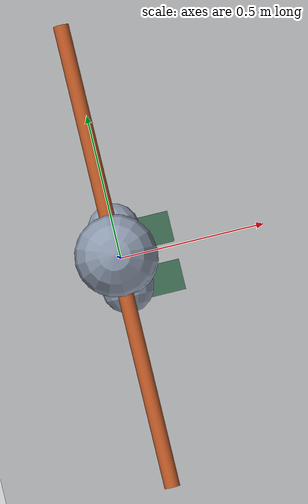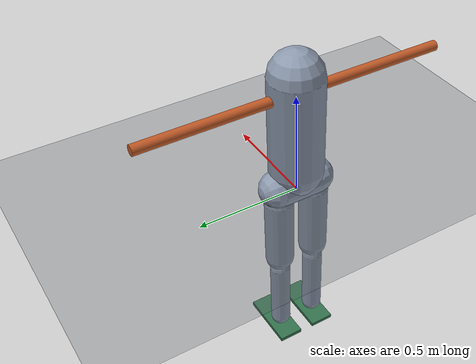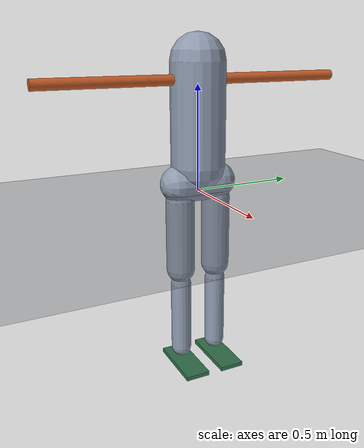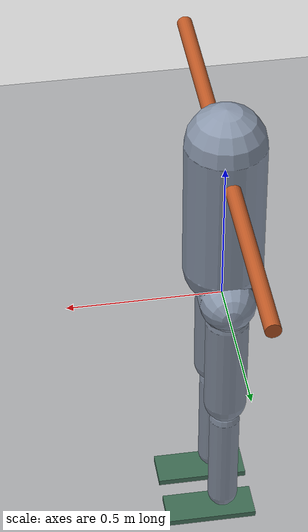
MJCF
<mujoco model="loaded_jump_athlete_v2">
  <compiler angle="radian" coordinate="local" inertiafromgeom="false"
            eulerseq="xyz" autolimits="true"/>

  <option timestep="0.000125"
          integrator="implicitfast"
          solver="Newton"
          iterations="100"
          ls_iterations="50"
          tolerance="1e-10"
          ls_tolerance="0.01"
          cone="elliptic"
          impratio="10.0"
          jacobian="dense"
          gravity="0 0 -9.81">
    <flag warmstart="enable"/>
  </option>

  <default>
    <joint limited="true" solreflimit="0.02 1.0" solimplimit="0.90 0.95 0.001 0.5 2.0"/>
    <geom condim="3" margin="0.0" gap="0.0" priority="0"
          solref="0.004 1.0" solimp="0.99 0.99 0.001 0.5 2.0"/>
    <motor ctrllimited="true" forcelimited="true"/>
    <default class="foot_box">
      <geom type="box" contype="2" conaffinity="1"
            friction="0.9 0.005 0.0001" rgba="0.20 0.45 0.30 1"/>
    </default>
    <default class="shell">
      <geom contype="0" conaffinity="0"
            friction="0.5 0.005 0.0001" rgba="0.55 0.60 0.68 1"/>
    </default>
  </default>

  <worldbody>
    <light name="key" pos="1.5 -1.5 3.0" dir="-0.4 0.4 -1" directional="true"/>
    <geom name="floor" type="plane" pos="0 0 0" size="0 0 0.05"
          contype="1" conaffinity="6"
          friction="0.9 0.005 0.0001"
          solref="0.016 1.0" solimp="0.99 0.99 0.001 0.5 2.0"
          margin="0.0" gap="0.0" condim="3" priority="0"
          rgba="0.35 0.37 0.40 1"/>

    <!-- pelvis root : sagittal free (x,z, pitch) — y, roll, yaw eliminated — honestly floating, no artificial positional catch, zero passive damping -->
    <body name="pelvis" pos="0 0 0" quat="1 0 0 0">
      <joint name="root_tx" type="slide" axis="1 0 0" limited="false" stiffness="0" damping="0" armature="0"/>
      <joint name="root_tz" type="slide" axis="0 0 1" limited="false" stiffness="0" damping="0" armature="0"/>
      <joint name="root_ry" type="hinge" axis="0 1 0" limited="false" stiffness="0" damping="0" armature="0"/>
      <inertial pos="0 0 0.070" quat="1 0 0 0" mass="10.65" diaginertia="0.086975 0.040115 0.09230"/>
      <geom name="pelvis_shell" class="shell" type="capsule" fromto="0 -0.10 0.040 0 0.10 0.040" size="0.090"/>
      <geom name="pelvis_fall" type="capsule" fromto="0 -0.10 0.040 0 0.10 0.040" size="0.090"
            contype="4" conaffinity="0" group="1"
            condim="3" margin="0.0" gap="0.0" priority="0"
            solref="0.004 1.0" solimp="0.99 0.99 0.001 0.5 2.0"
            friction="0.9 0.005 0.0001" rgba="0.55 0.60 0.68 0.2"/>

      <!-- torso + load -->
      <body name="torso_head_arms" pos="0 0 0.10" quat="1 0 0 0">
        <joint name="lumbar" type="hinge" axis="0 1 0" range="-0.60 0.60" limited="true" stiffness="15.0" damping="5.0" armature="0.02"/>
        <inertial pos="0 0 0.260" quat="1 0 0 0" mass="40.20" diaginertia="1.72190 1.48070 0.62712"/>
        <geom name="torso_shell" class="shell" type="capsule" fromto="0 0 0.020 0 0 0.500" size="0.130"/>
        <geom name="torso_fall" type="capsule" fromto="0 0 0.020 0 0 0.500" size="0.130"
              contype="4" conaffinity="0" group="1"
              condim="3" margin="0.0" gap="0.0" priority="0"
              solref="0.004 1.0" solimp="0.99 0.99 0.001 0.5 2.0"
              friction="0.9 0.005 0.0001" rgba="0.55 0.60 0.68 0.2"/>
        <body name="external_load" pos="0 0 0.420" quat="1 0 0 0">
          <inertial pos="0 0 0" quat="1 0 0 0" mass="20.0" diaginertia="3.753125 0.006250 3.753125"/>
          <geom name="load_shell" class="shell" type="cylinder" size="0.025 0.750" quat="0.70710678 -0.70710678 0 0" rgba="0.75 0.35 0.15 1"/>
        </body>
      </body>

      <!-- left leg -->
      <body name="left_thigh" pos="0 0.095 0" quat="1 0 0 0">
        <joint name="left_hip" type="hinge" axis="0 1 0" range="-0.50 1.80" limited="true" stiffness="15.0" damping="8.0" armature="0.02"/>
        <inertial pos="0 0 -0.186" quat="1 0 0 0" mass="7.50" diaginertia="0.126109 0.126109 0.021094"/>
        <geom name="left_thigh_shell" class="shell" type="capsule" fromto="0 0 -0.040 0 0 -0.390" size="0.070"/>
        <geom name="left_thigh_fall" type="capsule" fromto="0 0 -0.040 0 0 -0.390" size="0.070"
              contype="4" conaffinity="0" group="1"
              condim="3" margin="0.0" gap="0.0" priority="0"
              solref="0.004 1.0" solimp="0.99 0.99 0.001 0.5 2.0"
              friction="0.9 0.005 0.0001" rgba="0.55 0.60 0.68 0.2"/>
        <body name="left_shank" pos="0 0 -0.43" quat="1 0 0 0">
          <joint name="left_knee" type="hinge" axis="0 -1 0" range="0 2.40" limited="true" stiffness="15.0" damping="8.0" armature="0.015"/>
          <inertial pos="0 0 -0.186" quat="1 0 0 0" mass="3.4875" diaginertia="0.056374 0.056374 0.005275"/>
          <geom name="left_shank_shell" class="shell" type="capsule" fromto="0 0 -0.040 0 0 -0.390" size="0.050"/>
          <geom name="left_shank_fall" type="capsule" fromto="0 0 -0.040 0 0 -0.390" size="0.050"
                contype="4" conaffinity="0" group="1"
                condim="3" margin="0.0" gap="0.0" priority="0"
                solref="0.004 1.0" solimp="0.99 0.99 0.001 0.5 2.0"
                friction="0.9 0.005 0.0001" rgba="0.55 0.60 0.68 0.2"/>
          <body name="left_foot" pos="0 0 -0.43" quat="1 0 0 0">
            <joint name="left_ankle" type="hinge" axis="0 1 0" range="-0.70 0.50" limited="true" stiffness="15.0" damping="5.0" armature="0.008"/>
            <inertial pos="0.045 0 -0.020" quat="1 0 0 0" mass="1.0875" diaginertia="0.001262 0.006570 0.006944"/>
            <!-- robust box foot: center 0.045 relative ankle; half-sizes 0.15 x 0.06 x 0.010 => full length 0.30, width 0.12, thickness 0.02 ; RES-6 calibrated solref 0.016 -->
            <geom name="left_foot_box" class="foot_box" type="box" pos="0.045 0 -0.030" size="0.150 0.060 0.010" solref="0.016 1.0" solimp="0.99 0.99 0.001 0.5 2.0"/>
          </body>
        </body>
      </body>

      <!-- right leg -->
      <body name="right_thigh" pos="0 -0.095 0" quat="1 0 0 0">
        <joint name="right_hip" type="hinge" axis="0 1 0" range="-0.50 1.80" limited="true" stiffness="15.0" damping="8.0" armature="0.02"/>
        <inertial pos="0 0 -0.186" quat="1 0 0 0" mass="7.50" diaginertia="0.126109 0.126109 0.021094"/>
        <geom name="right_thigh_shell" class="shell" type="capsule" fromto="0 0 -0.040 0 0 -0.390" size="0.070"/>
        <geom name="right_thigh_fall" type="capsule" fromto="0 0 -0.040 0 0 -0.390" size="0.070"
              contype="4" conaffinity="0" group="1"
              condim="3" margin="0.0" gap="0.0" priority="0"
              solref="0.004 1.0" solimp="0.99 0.99 0.001 0.5 2.0"
              friction="0.9 0.005 0.0001" rgba="0.55 0.60 0.68 0.2"/>
        <body name="right_shank" pos="0 0 -0.43" quat="1 0 0 0">
          <joint name="right_knee" type="hinge" axis="0 -1 0" range="0 2.40" limited="true" stiffness="15.0" damping="8.0" armature="0.015"/>
          <inertial pos="0 0 -0.186" quat="1 0 0 0" mass="3.4875" diaginertia="0.056374 0.056374 0.005275"/>
          <geom name="right_shank_shell" class="shell" type="capsule" fromto="0 0 -0.040 0 0 -0.390" size="0.050"/>
          <geom name="right_shank_fall" type="capsule" fromto="0 0 -0.040 0 0 -0.390" size="0.050"
                contype="4" conaffinity="0" group="1"
                condim="3" margin="0.0" gap="0.0" priority="0"
                solref="0.004 1.0" solimp="0.99 0.99 0.001 0.5 2.0"
                friction="0.9 0.005 0.0001" rgba="0.55 0.60 0.68 0.2"/>
          <body name="right_foot" pos="0 0 -0.43" quat="1 0 0 0">
            <joint name="right_ankle" type="hinge" axis="0 1 0" range="-0.70 0.50" limited="true" stiffness="15.0" damping="5.0" armature="0.008"/>
            <inertial pos="0.045 0 -0.020" quat="1 0 0 0" mass="1.0875" diaginertia="0.001262 0.006570 0.006944"/>
            <geom name="right_foot_box" class="foot_box" type="box" pos="0.045 0 -0.030" size="0.150 0.060 0.010" solref="0.016 1.0" solimp="0.99 0.99 0.001 0.5 2.0"/>
          </body>
        </body>
      </body>
    </body>
  </worldbody>

  <contact>
    <exclude body1="pelvis" body2="torso_head_arms"/>
    <exclude body1="pelvis" body2="external_load"/>
    <exclude body1="pelvis" body2="left_thigh"/>
    <exclude body1="pelvis" body2="right_thigh"/>
    <exclude body1="torso_head_arms" body2="external_load"/>
    <exclude body1="left_thigh" body2="left_shank"/>
    <exclude body1="right_thigh" body2="right_shank"/>
    <exclude body1="left_shank" body2="left_foot"/>
    <exclude body1="right_shank" body2="right_foot"/>
  </contact>

  <actuator>
    <motor name="m_lumbar" joint="lumbar" gear="250" ctrlrange="-1 1" forcerange="-250 250"/>
    <motor name="m_left_hip" joint="left_hip" gear="250" ctrlrange="-1 1" forcerange="-250 250"/>
    <motor name="m_right_hip" joint="right_hip" gear="250" ctrlrange="-1 1" forcerange="-250 250"/>
    <motor name="m_left_knee" joint="left_knee" gear="300" ctrlrange="-1 1" forcerange="-300 300"/>
    <motor name="m_right_knee" joint="right_knee" gear="300" ctrlrange="-1 1" forcerange="-300 300"/>
    <motor name="m_left_ankle" joint="left_ankle" gear="200" ctrlrange="-1 1" forcerange="-200 200"/>
    <motor name="m_right_ankle" joint="right_ankle" gear="200" ctrlrange="-1 1" forcerange="-200 200"/>
  </actuator>

</mujoco>
